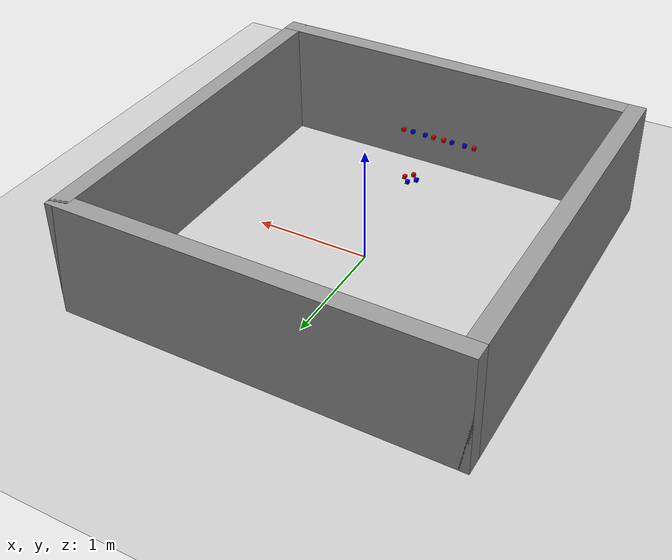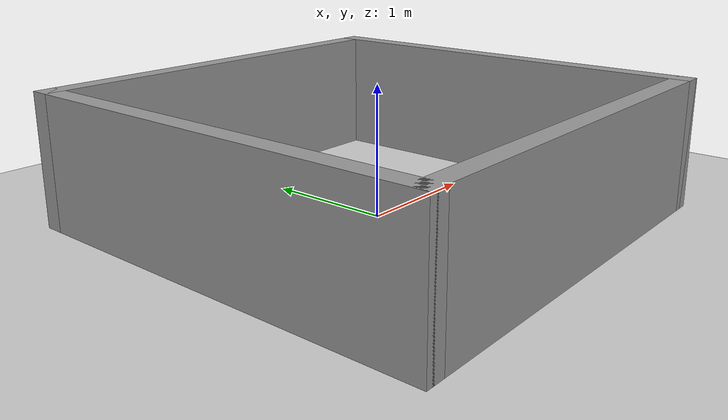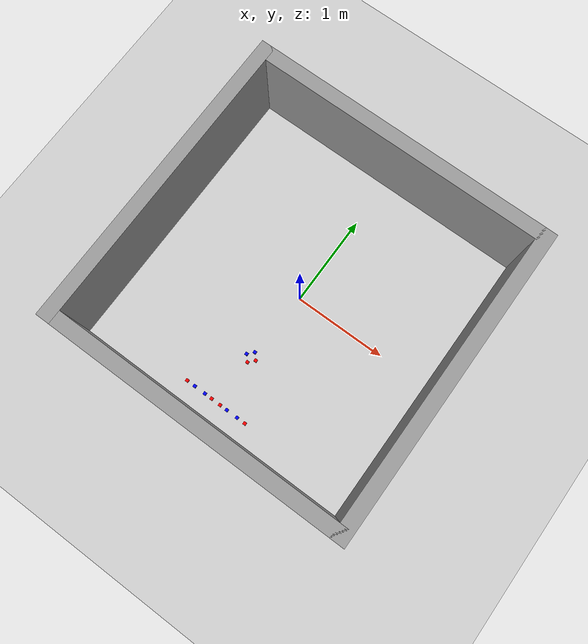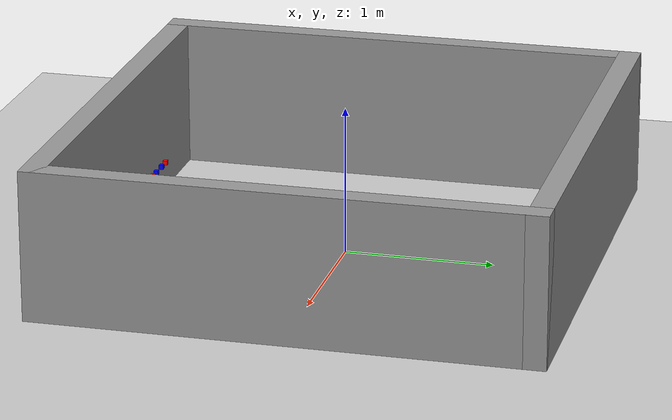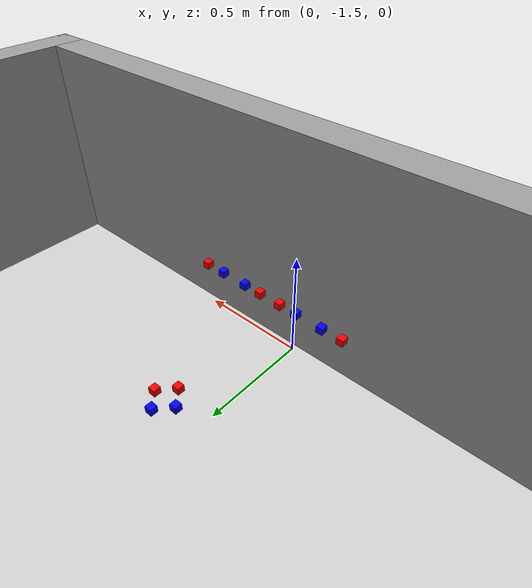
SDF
<?xml version='1.0'?>
<sdf version='1.6'>
  <world name='course'>
   <light name='sun' type='directional'>
      <cast_shadows>1</cast_shadows>
      <pose frame=''>0 0 10 0 -0 0</pose>
      <diffuse>0.8 0.8 0.8 1</diffuse>
      <specular>0.1 0.1 0.1 1</specular>
      <attenuation>
        <range>1000</range>
        <constant>0.9</constant>
        <linear>0.01</linear>
        <quadratic>0.001</quadratic>
      </attenuation>
      <direction>-0.5 0.5 -1</direction>
  </light>
  <model name='ground_plane'>
   <static>1</static>
      <link name='link'>
        <collision name='collision'>
          <geometry>
            <plane>
              <normal>0 0 1</normal>
              <size>100 100</size>
            </plane>
          </geometry>
          <surface>
            <friction>
              <ode>
                <mu>100</mu>
                <mu2>50</mu2>
              </ode>
              <torsional>
                <ode/>
              </torsional>
            </friction>
            <contact>
              <ode/>
            </contact>
            <bounce/>
          </surface>
          <max_contacts>10</max_contacts>
        </collision>
        <visual name='visual'>
          <cast_shadows>0</cast_shadows>
          <geometry>
            <plane>
              <normal>0 0 1</normal>
              <size>100 100</size>
            </plane>
          </geometry>
          <material>
            <script>
              <uri>file://media/materials/scripts/gazebo.material</uri>
              <name>Gazebo/Grey</name>
            </script>
          </material>
        </visual>
        <self_collide>0</self_collide>
        <kinematic>0</kinematic>
        <gravity>1</gravity>
      </link>
    </model>
  <model name='course_walls'>
    <pose frame=''>0 0 0 0 -0 0</pose>
    <link name='Wall_14'>
      <collision name='Wall_14_Collision'>
        <geometry>
          <box>
            <size>3.35 0.15 1</size>
          </box>
        </geometry>
        <pose frame=''>0 0 0.5 0 -0 0</pose>
      </collision>
      <visual name='Wall_14_Visual'>
        <pose frame=''>0 0 0.5 0 -0 0</pose>
        <geometry>
          <box>
            <size>3.35 0.15 1</size>
          </box>
        </geometry>
        <material>
          <script>
            <uri>file://media/materials/scripts/gazebo.material</uri>
            <name>Gazebo/Grey</name>
          </script>
          <ambient>1 1 1 1</ambient>
        </material>
        <meta>
          <layer>0</layer>
        </meta>
      </visual>
      <pose frame=''>0 1.6 0 0 -0 0</pose>
    </link>
    <link name='Wall_16'>
      <collision name='Wall_16_Collision'>
        <geometry>
          <box>
            <size>3.35 0.15 1</size>
          </box>
        </geometry>
        <pose frame=''>0 0 0.5 0 -0 0</pose>
      </collision>
      <visual name='Wall_16_Visual'>
        <pose frame=''>0 0 0.5 0 -0 0</pose>
        <geometry>
          <box>
            <size>3.35 0.15 1</size>
          </box>
        </geometry>
        <material>
          <script>
            <uri>file://media/materials/scripts/gazebo.material</uri>
            <name>Gazebo/Grey</name>
          </script>
          <ambient>1 1 1 1</ambient>
        </material>
        <meta>
          <layer>0</layer>
        </meta>
      </visual>
      <pose frame=''>-1.6 0 0 0 -0 -1.5708</pose>
    </link>
    <link name='Wall_17'>
      <collision name='Wall_17_Collision'>
        <geometry>
          <box>
            <size>3.35 0.15 1</size>
          </box>
        </geometry>
        <pose frame=''>0 0 0.5 0 -0 0</pose>
      </collision>
      <visual name='Wall_17_Visual'>
        <pose frame=''>0 0 0.5 0 -0 0</pose>
        <geometry>
          <box>
            <size>3.35 0.15 1</size>
          </box>
        </geometry>
        <material>
          <script>
            <uri>file://media/materials/scripts/gazebo.material</uri>
            <name>Gazebo/Grey</name>
          </script>
          <ambient>1 1 1 1</ambient>
        </material>
        <meta>
          <layer>0</layer>
        </meta>
      </visual>
      <pose frame=''>0 -1.6 0 0 -0 0</pose>
    </link>
    <link name='Wall_18'>
      <collision name='Wall_18_Collision'>
        <geometry>
          <box>
            <size>3.35 0.15 1</size>
          </box>
        </geometry>
        <pose frame=''>0 0 0.5 0 -0 0</pose>
      </collision>
      <visual name='Wall_18_Visual'>
        <pose frame=''>0 0 0.5 0 -0 0</pose>
        <geometry>
          <box>
            <size>3.35 0.15 1</size>
          </box>
        </geometry>
        <material>
          <script>
            <uri>file://media/materials/scripts/gazebo.material</uri>
            <name>Gazebo/Grey</name>
          </script>
          <ambient>1 1 1 1</ambient>
        </material>
        <meta>
          <layer>0</layer>
        </meta>
      </visual>
      <pose frame=''>1.6 0 0 0 -0 1.5708</pose>
    </link>
    <static>1</static>
  </model>

  <model name="blue_cube_1">
    <pose>-0.055 -0.8 0.3 0 0 0</pose>
    <static>false</static>
    <link name="link">
      <inertial>
        <mass>0.020</mass>
        <inertia> <!-- inertias are tricky to compute -->
          <!-- http://gazebosim.org/tutorials?tut=inertia&cat=build_robot -->
          <ixx>0.000003</ixx>       <!-- for a box: ixx = 0.083 * mass * (y*y + z*z) -->
          <ixy>0.0</ixy>         <!-- for a box: ixy = 0 -->
          <ixz>0.0</ixz>         <!-- for a box: ixz = 0 -->
          <iyy>0.000003</iyy>       <!-- for a box: iyy = 0.083 * mass * (x*x + z*z) -->
          <iyz>0.0</iyz>         <!-- for a box: iyz = 0 -->
          <izz>0.000003</izz>       <!-- for a box: izz = 0.083 * mass * (x*x + y*y) -->
        </inertia>
      </inertial>
      <collision name="collision">
        <geometry>
          <box>
            <size>0.03 0.03 0.03</size>
          </box>
        </geometry>
      </collision>
      <visual name="visual">
        <geometry>
          <box>
            <size>0.03 0.03 0.03</size>
          </box>
        </geometry>
        <material> <!-- blue cube material -->
          <ambient>0 0 1 1</ambient>
          <diffuse>0 0 1 1</diffuse>
          <specular>0 0 0 1</specular>
          <emissive>0 0 0 1</emissive>
        </material> <!-- blue cube material -->
      </visual>
    </link>
  </model>
  <model name="blue_cube_2">
    <pose>0 -0.74 0.3 0 0 0</pose>
    <static>false</static>
    <link name="link">
      <inertial>
        <mass>0.020</mass>
        <inertia> <!-- inertias are tricky to compute -->
          <!-- http://gazebosim.org/tutorials?tut=inertia&cat=build_robot -->
          <ixx>0.000003</ixx>       <!-- for a box: ixx = 0.083 * mass * (y*y + z*z) -->
          <ixy>0.0</ixy>         <!-- for a box: ixy = 0 -->
          <ixz>0.0</ixz>         <!-- for a box: ixz = 0 -->
          <iyy>0.000003</iyy>       <!-- for a box: iyy = 0.083 * mass * (x*x + z*z) -->
          <iyz>0.0</iyz>         <!-- for a box: iyz = 0 -->
          <izz>0.000003</izz>       <!-- for a box: izz = 0.083 * mass * (x*x + y*y) -->
        </inertia>
      </inertial>
      <collision name="collision">
        <geometry>
          <box>
            <size>0.03 0.03 0.03</size>
          </box>
        </geometry>
      </collision>
      <visual name="visual">
        <geometry>
          <box>
            <size>0.03 0.03 0.03</size>
          </box>
        </geometry>
        <material> <!-- blue cube material -->
          <ambient>0 0 1 1</ambient>
          <diffuse>0 0 1 1</diffuse>
          <specular>0 0 0 1</specular>
          <emissive>0 0 0 1</emissive>
        </material> <!-- blue cube material -->
      </visual>
    </link>
  </model>
  <model name="blue_cube_3">
    <pose>0.13 -1.34 0.4 0 0 0</pose>
    <static>false</static>
    <link name="link">
      <inertial>
        <mass>0.020</mass>
        <inertia> <!-- inertias are tricky to compute -->
          <!-- http://gazebosim.org/tutorials?tut=inertia&cat=build_robot -->
          <ixx>0.000003</ixx>       <!-- for a box: ixx = 0.083 * mass * (y*y + z*z) -->
          <ixy>0.0</ixy>         <!-- for a box: ixy = 0 -->
          <ixz>0.0</ixz>         <!-- for a box: ixz = 0 -->
          <iyy>0.000003</iyy>       <!-- for a box: iyy = 0.083 * mass * (x*x + z*z) -->
          <iyz>0.0</iyz>         <!-- for a box: iyz = 0 -->
          <izz>0.000003</izz>       <!-- for a box: izz = 0.083 * mass * (x*x + y*y) -->
        </inertia>
      </inertial>
      <collision name="collision">
        <geometry>
          <box>
            <size>0.03 0.03 0.03</size>
          </box>
        </geometry>
      </collision>
      <visual name="visual">
        <geometry>
          <box>
            <size>0.03 0.03 0.03</size>
          </box>
        </geometry>
        <material> <!-- blue cube material -->
          <ambient>0 0 1 1</ambient>
          <diffuse>0 0 1 1</diffuse>
          <specular>0 0 0 1</specular>
          <emissive>0 0 0 1</emissive>
        </material> <!-- blue cube material -->
      </visual>
    </link>
  </model>
  <model name="blue_cube_4">
    <pose>0.25 -1.34 0.4 0 0 0</pose>
    <static>false</static>
    <link name="link">
      <inertial>
        <mass>0.020</mass>
        <inertia> <!-- inertias are tricky to compute -->
          <!-- http://gazebosim.org/tutorials?tut=inertia&cat=build_robot -->
          <ixx>0.000003</ixx>       <!-- for a box: ixx = 0.083 * mass * (y*y + z*z) -->
          <ixy>0.0</ixy>         <!-- for a box: ixy = 0 -->
          <ixz>0.0</ixz>         <!-- for a box: ixz = 0 -->
          <iyy>0.000003</iyy>       <!-- for a box: iyy = 0.083 * mass * (x*x + z*z) -->
          <iyz>0.0</iyz>         <!-- for a box: iyz = 0 -->
          <izz>0.000003</izz>       <!-- for a box: izz = 0.083 * mass * (x*x + y*y) -->
        </inertia>
      </inertial>
      <collision name="collision">
        <geometry>
          <box>
            <size>0.03 0.03 0.03</size>
          </box>
        </geometry>
      </collision>
      <visual name="visual">
        <geometry>
          <box>
            <size>0.03 0.03 0.03</size>
          </box>
        </geometry>
        <material> <!-- blue cube material -->
          <ambient>0 0 1 1</ambient>
          <diffuse>0 0 1 1</diffuse>
          <specular>0 0 0 1</specular>
          <emissive>0 0 0 1</emissive>
        </material> <!-- blue cube material -->
      </visual>
    </link>
  </model>
  <model name="blue_cube_5">
    <pose>-0.13 -1.34 0.4 0 0 0</pose>
    <static>false</static>
    <link name="link">
      <inertial>
        <mass>0.020</mass>
        <inertia> <!-- inertias are tricky to compute -->
          <!-- http://gazebosim.org/tutorials?tut=inertia&cat=build_robot -->
          <ixx>0.000003</ixx>       <!-- for a box: ixx = 0.083 * mass * (y*y + z*z) -->
          <ixy>0.0</ixy>         <!-- for a box: ixy = 0 -->
          <ixz>0.0</ixz>         <!-- for a box: ixz = 0 -->
          <iyy>0.000003</iyy>       <!-- for a box: iyy = 0.083 * mass * (x*x + z*z) -->
          <iyz>0.0</iyz>         <!-- for a box: iyz = 0 -->
          <izz>0.000003</izz>       <!-- for a box: izz = 0.083 * mass * (x*x + y*y) -->
        </inertia>
      </inertial>
      <collision name="collision">
        <geometry>
          <box>
            <size>0.03 0.03 0.03</size>
          </box>
        </geometry>
      </collision>
      <visual name="visual">
        <geometry>
          <box>
            <size>0.03 0.03 0.03</size>
          </box>
        </geometry>
        <material> <!-- blue cube material -->
          <ambient>0 0 1 1</ambient>
          <diffuse>0 0 1 1</diffuse>
          <specular>0 0 0 1</specular>
          <emissive>0 0 0 1</emissive>
        </material> <!-- blue cube material -->
      </visual>
    </link>
  </model>
  <model name="blue_cube_6">
    <pose>-0.25 -1.34 0.4 0 0 0</pose>
    <static>false</static>
    <link name="link">
      <inertial>
        <mass>0.020</mass>
        <inertia> <!-- inertias are tricky to compute -->
          <!-- http://gazebosim.org/tutorials?tut=inertia&cat=build_robot -->
          <ixx>0.000003</ixx>       <!-- for a box: ixx = 0.083 * mass * (y*y + z*z) -->
          <ixy>0.0</ixy>         <!-- for a box: ixy = 0 -->
          <ixz>0.0</ixz>         <!-- for a box: ixz = 0 -->
          <iyy>0.000003</iyy>       <!-- for a box: iyy = 0.083 * mass * (x*x + z*z) -->
          <iyz>0.0</iyz>         <!-- for a box: iyz = 0 -->
          <izz>0.000003</izz>       <!-- for a box: izz = 0.083 * mass * (x*x + y*y) -->
        </inertia>
      </inertial>
      <collision name="collision">
        <geometry>
          <box>
            <size>0.03 0.03 0.03</size>
          </box>
        </geometry>
      </collision>
      <visual name="visual">
        <geometry>
          <box>
            <size>0.03 0.03 0.03</size>
          </box>
        </geometry>
        <material> <!-- blue cube material -->
          <ambient>0 0 1 1</ambient>
          <diffuse>0 0 1 1</diffuse>
          <specular>0 0 0 1</specular>
          <emissive>0 0 0 1</emissive>
        </material> <!-- blue cube material -->
      </visual>
    </link>
  </model>
  <model name="red_cube_1">
    <pose>0.055 -0.8 0.3 0 0 0</pose>
    <static>false</static>
    <link name="link">
      <inertial>
        <mass>0.020</mass>
        <inertia> <!-- inertias are tricky to compute -->
          <!-- http://gazebosim.org/tutorials?tut=inertia&cat=build_robot -->
          <ixx>0.000003</ixx>       <!-- for a box: ixx = 0.083 * mass * (y*y + z*z) -->
          <ixy>0.0</ixy>         <!-- for a box: ixy = 0 -->
          <ixz>0.0</ixz>         <!-- for a box: ixz = 0 -->
          <iyy>0.000003</iyy>       <!-- for a box: iyy = 0.083 * mass * (x*x + z*z) -->
          <iyz>0.0</iyz>         <!-- for a box: iyz = 0 -->
          <izz>0.000003</izz>       <!-- for a box: izz = 0.083 * mass * (x*x + y*y) -->
        </inertia>
      </inertial>
      <collision name="collision">
        <geometry>
          <box>
            <size>0.03 0.03 0.03</size>
          </box>
        </geometry>
      </collision>
      <visual name="visual">
        <geometry>
          <box>
            <size>0.03 0.03 0.03</size>
          </box>
        </geometry>
        <material> <!-- blue cube material -->
          <ambient>1 0 0 1</ambient>
          <diffuse>1 0 0 1</diffuse>
          <specular>0 0 0 1</specular>
          <emissive>0 0 0 1</emissive>
        </material> <!-- blue cube material -->
      </visual>
    </link>
  </model>
  <model name="red_cube_2">
    <pose>0 -0.86 0.3 0 0 0</pose>
    <static>false</static>
    <link name="link">
      <inertial>
        <mass>0.020</mass>
        <inertia> <!-- inertias are tricky to compute -->
          <!-- http://gazebosim.org/tutorials?tut=inertia&cat=build_robot -->
          <ixx>0.000003</ixx>       <!-- for a box: ixx = 0.083 * mass * (y*y + z*z) -->
          <ixy>0.0</ixy>         <!-- for a box: ixy = 0 -->
          <ixz>0.0</ixz>         <!-- for a box: ixz = 0 -->
          <iyy>0.000003</iyy>       <!-- for a box: iyy = 0.083 * mass * (x*x + z*z) -->
          <iyz>0.0</iyz>         <!-- for a box: iyz = 0 -->
          <izz>0.000003</izz>       <!-- for a box: izz = 0.083 * mass * (x*x + y*y) -->
        </inertia>
      </inertial>
      <collision name="collision">
        <geometry>
          <box>
            <size>0.03 0.03 0.03</size>
          </box>
        </geometry>
      </collision>
      <visual name="visual">
        <geometry>
          <box>
            <size>0.03 0.03 0.03</size>
          </box>
        </geometry>
        <material> <!-- blue cube material -->
          <ambient>1 0 0 1</ambient>
          <diffuse>1 0 0 1</diffuse>
          <specular>0 0 0 1</specular>
          <emissive>0 0 0 1</emissive>
        </material> <!-- blue cube material -->
      </visual>
    </link>
  </model>
  <model name="red_cube_3">
    <pose>0.05 -1.34 0.4 0 0 0</pose>
    <static>false</static>
    <link name="link">
      <inertial>
        <mass>0.020</mass>
        <inertia> <!-- inertias are tricky to compute -->
          <!-- http://gazebosim.org/tutorials?tut=inertia&cat=build_robot -->
          <ixx>0.000003</ixx>       <!-- for a box: ixx = 0.083 * mass * (y*y + z*z) -->
          <ixy>0.0</ixy>         <!-- for a box: ixy = 0 -->
          <ixz>0.0</ixz>         <!-- for a box: ixz = 0 -->
          <iyy>0.000003</iyy>       <!-- for a box: iyy = 0.083 * mass * (x*x + z*z) -->
          <iyz>0.0</iyz>         <!-- for a box: iyz = 0 -->
          <izz>0.000003</izz>       <!-- for a box: izz = 0.083 * mass * (x*x + y*y) -->
        </inertia>
      </inertial>
      <collision name="collision">
        <geometry>
          <box>
            <size>0.03 0.03 0.03</size>
          </box>
        </geometry>
      </collision>
      <visual name="visual">
        <geometry>
          <box>
            <size>0.03 0.03 0.03</size>
          </box>
        </geometry>
        <material> <!-- blue cube material -->
          <ambient>1 0 0 1</ambient>
          <diffuse>1 0 0 1</diffuse>
          <specular>0 0 0 1</specular>
          <emissive>0 0 0 1</emissive>
        </material> <!-- blue cube material -->
      </visual>
    </link>
  </model>
  <model name="red_cube_4">
    <pose>0.34 -1.34 0.4 0 0 0</pose>
    <static>false</static>
    <link name="link">
      <inertial>
        <mass>0.020</mass>
        <inertia> <!-- inertias are tricky to compute -->
          <!-- http://gazebosim.org/tutorials?tut=inertia&cat=build_robot -->
          <ixx>0.000003</ixx>       <!-- for a box: ixx = 0.083 * mass * (y*y + z*z) -->
          <ixy>0.0</ixy>         <!-- for a box: ixy = 0 -->
          <ixz>0.0</ixz>         <!-- for a box: ixz = 0 -->
          <iyy>0.000003</iyy>       <!-- for a box: iyy = 0.083 * mass * (x*x + z*z) -->
          <iyz>0.0</iyz>         <!-- for a box: iyz = 0 -->
          <izz>0.000003</izz>       <!-- for a box: izz = 0.083 * mass * (x*x + y*y) -->
        </inertia>
      </inertial>
      <collision name="collision">
        <geometry>
          <box>
            <size>0.03 0.03 0.03</size>
          </box>
        </geometry>
      </collision>
      <visual name="visual">
        <geometry>
          <box>
            <size>0.03 0.03 0.03</size>
          </box>
        </geometry>
        <material> <!-- blue cube material -->
          <ambient>1 0 0 1</ambient>
          <diffuse>1 0 0 1</diffuse>
          <specular>0 0 0 1</specular>
          <emissive>0 0 0 1</emissive>
        </material> <!-- blue cube material -->
      </visual>
    </link>
  </model>
  <model name="red_cube_5">
    <pose>-0.05 -1.34 0.4 0 0 0</pose>
    <static>false</static>
    <link name="link">
      <inertial>
        <mass>0.020</mass>
        <inertia> <!-- inertias are tricky to compute -->
          <!-- http://gazebosim.org/tutorials?tut=inertia&cat=build_robot -->
          <ixx>0.000003</ixx>       <!-- for a box: ixx = 0.083 * mass * (y*y + z*z) -->
          <ixy>0.0</ixy>         <!-- for a box: ixy = 0 -->
          <ixz>0.0</ixz>         <!-- for a box: ixz = 0 -->
          <iyy>0.000003</iyy>       <!-- for a box: iyy = 0.083 * mass * (x*x + z*z) -->
          <iyz>0.0</iyz>         <!-- for a box: iyz = 0 -->
          <izz>0.000003</izz>       <!-- for a box: izz = 0.083 * mass * (x*x + y*y) -->
        </inertia>
      </inertial>
      <collision name="collision">
        <geometry>
          <box>
            <size>0.03 0.03 0.03</size>
          </box>
        </geometry>
      </collision>
      <visual name="visual">
        <geometry>
          <box>
            <size>0.03 0.03 0.03</size>
          </box>
        </geometry>
        <material> <!-- blue cube material -->
          <ambient>1 0 0 1</ambient>
          <diffuse>1 0 0 1</diffuse>
          <specular>0 0 0 1</specular>
          <emissive>0 0 0 1</emissive>
        </material> <!-- blue cube material -->
      </visual>
    </link>
  </model>
  <model name="red_cube_6">
    <pose>-0.34 -1.34 0.4 0 0 0</pose>
    <static>false</static>
    <link name="link">
      <inertial>
        <mass>0.020</mass>
        <inertia> <!-- inertias are tricky to compute -->
          <!-- http://gazebosim.org/tutorials?tut=inertia&cat=build_robot -->
          <ixx>0.000003</ixx>       <!-- for a box: ixx = 0.083 * mass * (y*y + z*z) -->
          <ixy>0.0</ixy>         <!-- for a box: ixy = 0 -->
          <ixz>0.0</ixz>         <!-- for a box: ixz = 0 -->
          <iyy>0.000003</iyy>       <!-- for a box: iyy = 0.083 * mass * (x*x + z*z) -->
          <iyz>0.0</iyz>         <!-- for a box: iyz = 0 -->
          <izz>0.000003</izz>       <!-- for a box: izz = 0.083 * mass * (x*x + y*y) -->
        </inertia>
      </inertial>
      <collision name="collision">
        <geometry>
          <box>
            <size>0.03 0.03 0.03</size>
          </box>
        </geometry>
      </collision>
      <visual name="visual">
        <geometry>
          <box>
            <size>0.03 0.03 0.03</size>
          </box>
        </geometry>
        <material> <!-- blue cube material -->
          <ambient>1 0 0 1</ambient>
          <diffuse>1 0 0 1</diffuse>
          <specular>0 0 0 1</specular>
          <emissive>0 0 0 1</emissive>
        </material> <!-- blue cube material -->
      </visual>
    </link>
  </model>

  <gravity>0 0 -9.8</gravity>
  <magnetic_field>6e-06 2.3e-05 -4.2e-05</magnetic_field>
  <atmosphere type='adiabatic'/>
  <physics name='default_physics' default='0' type='ode'>
  <max_step_size>0.003</max_step_size>
  <real_time_factor>1</real_time_factor>
  <real_time_update_rate>1000</real_time_update_rate>
  </physics>
      <scene>
      <ambient>0.4 0.4 0.4 1</ambient>
      <background>0.7 0.7 0.7 1</background>
      <shadows>1</shadows>
    </scene>
        <gui fullscreen='0'>
      <camera name='user_camera'>
        <pose frame=''>6.60813 7.35916 8.89399 0 0.789797 -2.25899</pose>
        <view_controller>orbit</view_controller>
        <projection_type>perspective</projection_type>
      </camera>
    </gui>
  </world>
</sdf>
